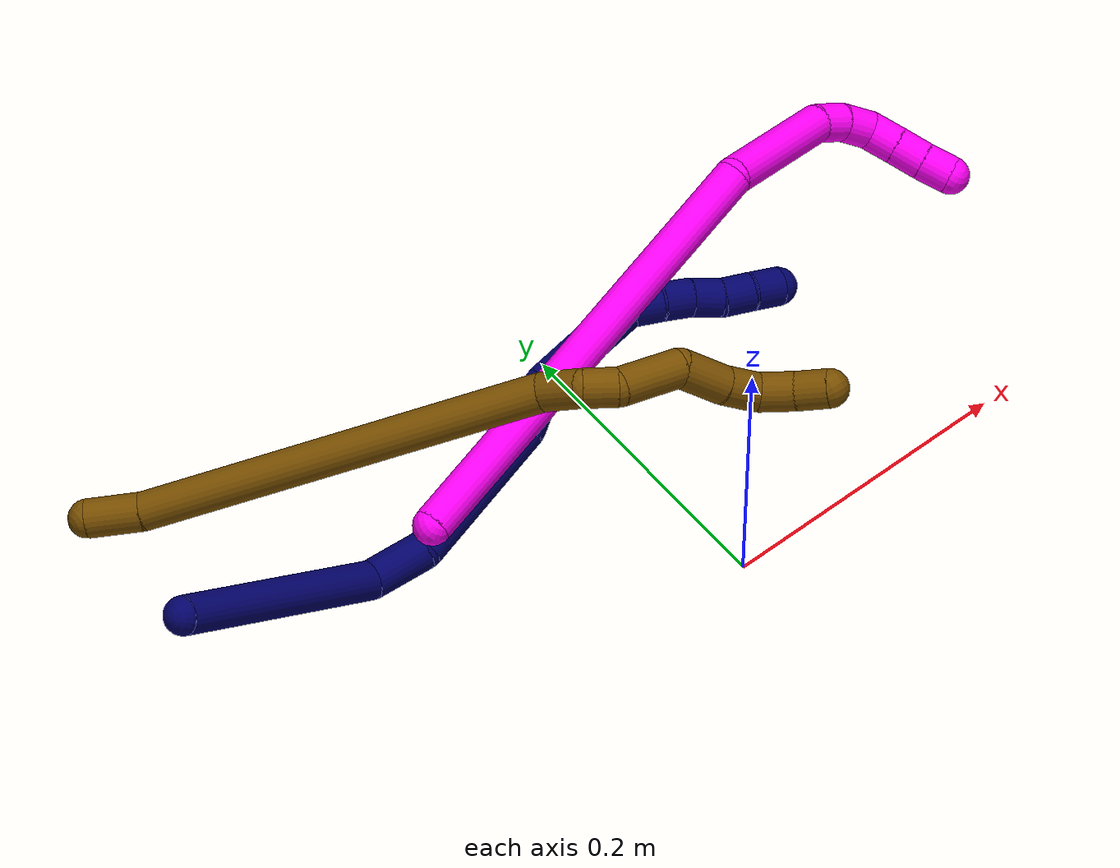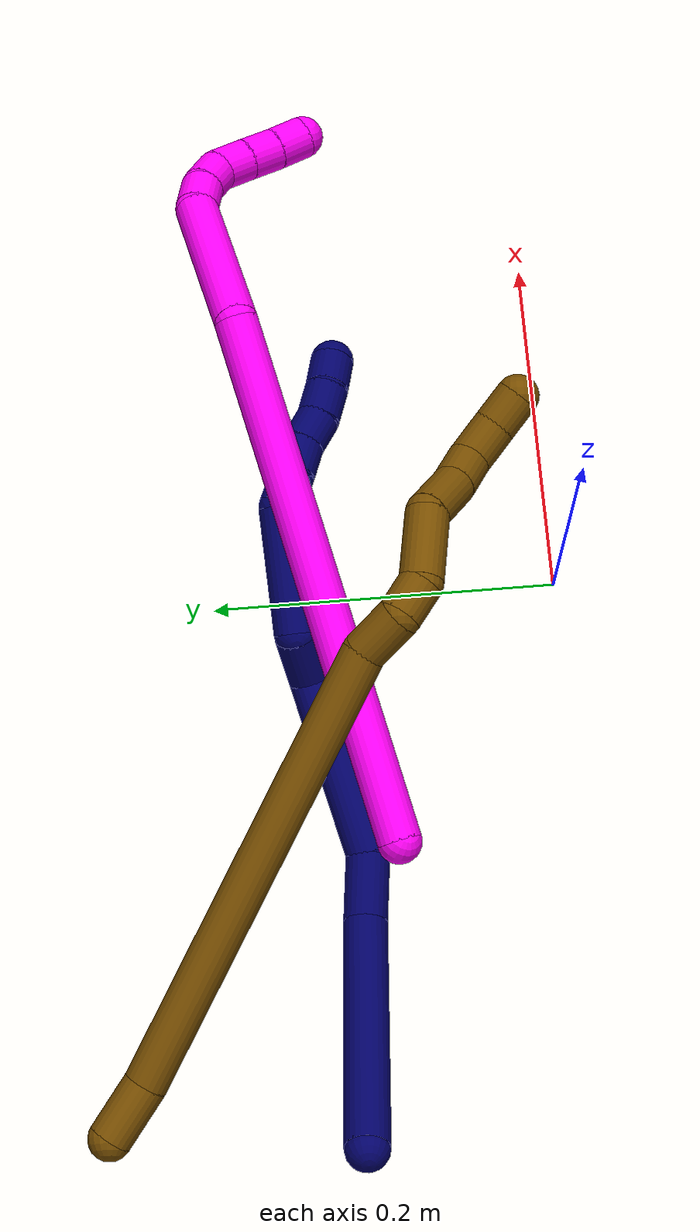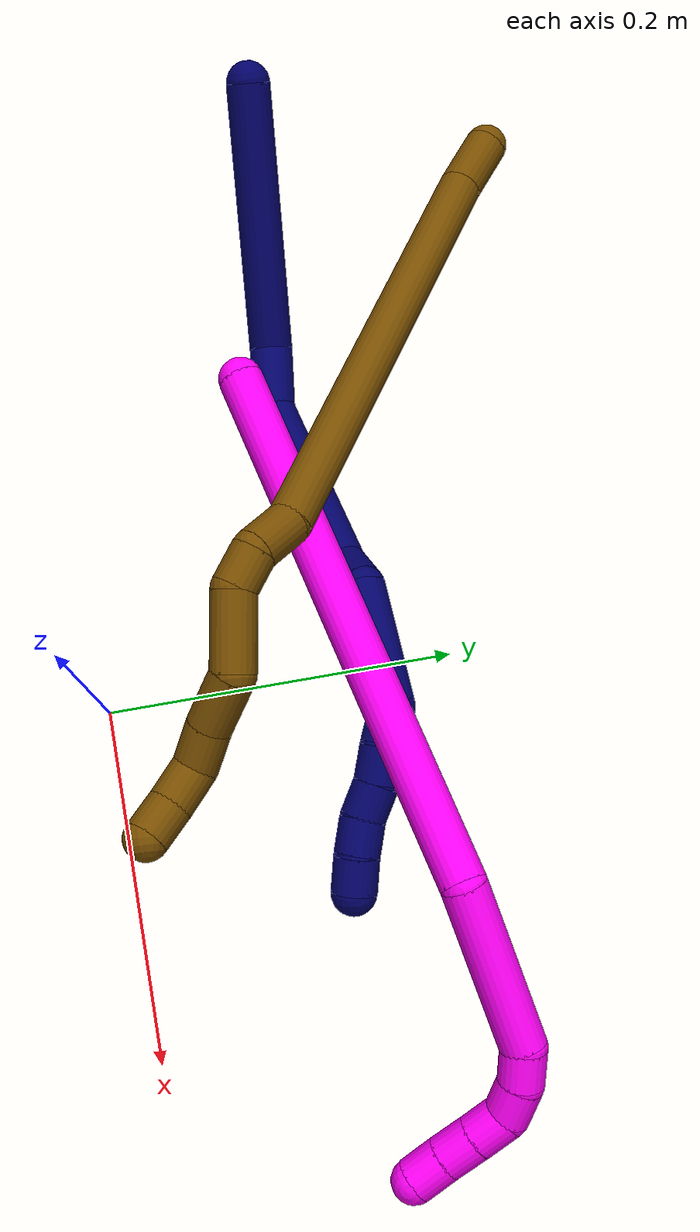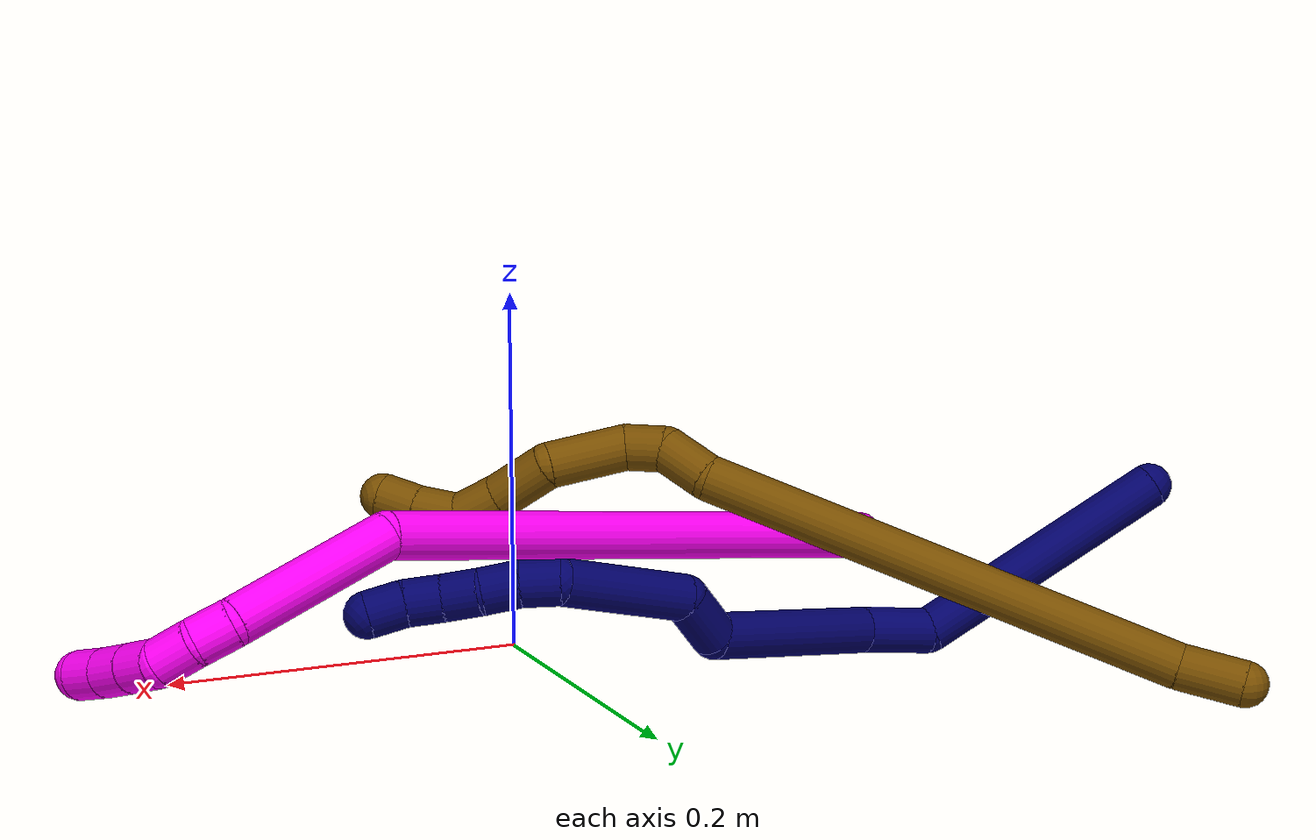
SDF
<sdf version="1.7">
 <world name="default">
  <model name="7">
   <static>0</static>
   <link name="7">
    <collision name="collision-cylinder-e_1_1_4">
     <pose>0.010124 -0.008341 -0.074289 3.02978 0.134609 1.75577</pose>
     <geometry><cylinder><radius>0.0125</radius><length>0.150876</length></cylinder></geometry>
     <surface>
      <friction><ode><mu>1.16</mu><mu2>1.16</mu2><slip1>0</slip1><slip2>0</slip2></ode></friction>
      <contact><ode><kp>1e+06</kp><kd>1</kd><max_vel>0</max_vel><min_depth>0.001</min_depth></ode></contact>
     </surface>
    </collision>
    <visual name="visual-cylinder-e_1_1_4">
     <pose>0.010124 -0.008341 -0.074289 3.02978 0.134609 1.75577</pose>
     <geometry><cylinder><radius>0.0125</radius><length>0.150876</length></cylinder></geometry>
     <material><ambient>0.003922 0 0.403922 1</ambient></material>
    </visual>
    <collision name="collision-cylinder-e_2_4_5">
     <pose>0.032054 -0.022666 -0.16267 2.74005 0.656904 2.06493</pose>
     <geometry><cylinder><radius>0.0125</radius><length>0.038666</length></cylinder></geometry>
     <surface>
      <friction><ode><mu>1.16</mu><mu2>1.16</mu2><slip1>0</slip1><slip2>0</slip2></ode></friction>
      <contact><ode><kp>1e+06</kp><kd>1</kd><max_vel>0</max_vel><min_depth>0.001</min_depth></ode></contact>
     </surface>
    </collision>
    <visual name="visual-cylinder-e_2_4_5">
     <pose>0.032054 -0.022666 -0.16267 2.74005 0.656904 2.06493</pose>
     <geometry><cylinder><radius>0.0125</radius><length>0.038666</length></cylinder></geometry>
     <material><ambient>0.003922 0 0.403922 1</ambient></material>
    </visual>
    <collision name="collision-cylinder-e_3_5_6">
     <pose>0.082025 -0.027597 -0.212113 -3.11182 0.823429 -3.07344</pose>
     <geometry><cylinder><radius>0.0125</radius><length>0.104066</length></cylinder></geometry>
     <surface>
      <friction><ode><mu>1.16</mu><mu2>1.16</mu2><slip1>0</slip1><slip2>0</slip2></ode></friction>
      <contact><ode><kp>1e+06</kp><kd>1</kd><max_vel>0</max_vel><min_depth>0.001</min_depth></ode></contact>
     </surface>
    </collision>
    <visual name="visual-cylinder-e_3_5_6">
     <pose>0.082025 -0.027597 -0.212113 -3.11182 0.823429 -3.07344</pose>
     <geometry><cylinder><radius>0.0125</radius><length>0.104066</length></cylinder></geometry>
     <material><ambient>0.003922 0 0.403922 1</ambient></material>
    </visual>
    <collision name="collision-cylinder-e_4_6_7">
     <pose>0.136266 -0.028123 -0.247806 1.78345 1.47063 1.68449</pose>
     <geometry><cylinder><radius>0.0125</radius><length>0.032312</length></cylinder></geometry>
     <surface>
      <friction><ode><mu>1.16</mu><mu2>1.16</mu2><slip1>0</slip1><slip2>0</slip2></ode></friction>
      <contact><ode><kp>1e+06</kp><kd>1</kd><max_vel>0</max_vel><min_depth>0.001</min_depth></ode></contact>
     </surface>
    </collision>
    <visual name="visual-cylinder-e_4_6_7">
     <pose>0.136266 -0.028123 -0.247806 1.78345 1.47063 1.68449</pose>
     <geometry><cylinder><radius>0.0125</radius><length>0.032312</length></cylinder></geometry>
     <material><ambient>0.003922 0 0.403922 1</ambient></material>
    </visual>
    <collision name="collision-cylinder-e_5_7_8">
     <pose>0.179721 -0.036436 -0.270883 2.85367 0.857055 2.52705</pose>
     <geometry><cylinder><radius>0.0125</radius><length>0.072441</length></cylinder></geometry>
     <surface>
      <friction><ode><mu>1.16</mu><mu2>1.16</mu2><slip1>0</slip1><slip2>0</slip2></ode></friction>
      <contact><ode><kp>1e+06</kp><kd>1</kd><max_vel>0</max_vel><min_depth>0.001</min_depth></ode></contact>
     </surface>
    </collision>
    <visual name="visual-cylinder-e_5_7_8">
     <pose>0.179721 -0.036436 -0.270883 2.85367 0.857055 2.52705</pose>
     <geometry><cylinder><radius>0.0125</radius><length>0.072441</length></cylinder></geometry>
     <material><ambient>0.003922 0 0.403922 1</ambient></material>
    </visual>
    <collision name="collision-cylinder-e_6_8_9">
     <pose>0.211237 -0.048889 -0.301742 2.52809 0.394552 1.12584</pose>
     <geometry><cylinder><radius>0.0125</radius><length>0.021523</length></cylinder></geometry>
     <surface>
      <friction><ode><mu>1.16</mu><mu2>1.16</mu2><slip1>0</slip1><slip2>0</slip2></ode></friction>
      <contact><ode><kp>1e+06</kp><kd>1</kd><max_vel>0</max_vel><min_depth>0.001</min_depth></ode></contact>
     </surface>
    </collision>
    <visual name="visual-cylinder-e_6_8_9">
     <pose>0.211237 -0.048889 -0.301742 2.52809 0.394552 1.12584</pose>
     <geometry><cylinder><radius>0.0125</radius><length>0.021523</length></cylinder></geometry>
     <material><ambient>0.003922 0 0.403922 1</ambient></material>
    </visual>
    <collision name="collision-cylinder-e_7_9_10">
     <pose>0.218379 -0.058954 -0.318366 2.66907 0.305029 1.13641</pose>
     <geometry><cylinder><radius>0.0125</radius><length>0.020018</length></cylinder></geometry>
     <surface>
      <friction><ode><mu>1.16</mu><mu2>1.16</mu2><slip1>0</slip1><slip2>0</slip2></ode></friction>
      <contact><ode><kp>1e+06</kp><kd>1</kd><max_vel>0</max_vel><min_depth>0.001</min_depth></ode></contact>
     </surface>
    </collision>
    <visual name="visual-cylinder-e_7_9_10">
     <pose>0.218379 -0.058954 -0.318366 2.66907 0.305029 1.13641</pose>
     <geometry><cylinder><radius>0.0125</radius><length>0.020018</length></cylinder></geometry>
     <material><ambient>0.003922 0 0.403922 1</ambient></material>
    </visual>
    <collision name="collision-cylinder-e_8_10_11">
     <pose>0.223279 -0.069214 -0.334742 2.49733 0.189928 0.556001</pose>
     <geometry><cylinder><radius>0.0125</radius><length>0.02006</length></cylinder></geometry>
     <surface>
      <friction><ode><mu>1.16</mu><mu2>1.16</mu2><slip1>0</slip1><slip2>0</slip2></ode></friction>
      <contact><ode><kp>1e+06</kp><kd>1</kd><max_vel>0</max_vel><min_depth>0.001</min_depth></ode></contact>
     </surface>
    </collision>
    <visual name="visual-cylinder-e_8_10_11">
     <pose>0.223279 -0.069214 -0.334742 2.49733 0.189928 0.556001</pose>
     <geometry><cylinder><radius>0.0125</radius><length>0.02006</length></cylinder></geometry>
     <material><ambient>0.003922 0 0.403922 1</ambient></material>
    </visual>
    <collision name="collision-cylinder-e_9_11_12">
     <pose>0.228829 -0.079582 -0.350799 2.64331 0.37409 1.27912</pose>
     <geometry><cylinder><radius>0.0125</radius><length>0.020014</length></cylinder></geometry>
     <surface>
      <friction><ode><mu>1.16</mu><mu2>1.16</mu2><slip1>0</slip1><slip2>0</slip2></ode></friction>
      <contact><ode><kp>1e+06</kp><kd>1</kd><max_vel>0</max_vel><min_depth>0.001</min_depth></ode></contact>
     </surface>
    </collision>
    <visual name="visual-cylinder-e_9_11_12">
     <pose>0.228829 -0.079582 -0.350799 2.64331 0.37409 1.27912</pose>
     <geometry><cylinder><radius>0.0125</radius><length>0.020014</length></cylinder></geometry>
     <material><ambient>0.003922 0 0.403922 1</ambient></material>
    </visual>
    <collision name="collision-cylinder-e_10_12_2">
     <pose>0.23534 -0.087305 -0.368003 2.79377 0.289095 1.38379</pose>
     <geometry><cylinder><radius>0.0125</radius><length>0.020024</length></cylinder></geometry>
     <surface>
      <friction><ode><mu>1.16</mu><mu2>1.16</mu2><slip1>0</slip1><slip2>0</slip2></ode></friction>
      <contact><ode><kp>1e+06</kp><kd>1</kd><max_vel>0</max_vel><min_depth>0.001</min_depth></ode></contact>
     </surface>
    </collision>
    <visual name="visual-cylinder-e_10_12_2">
     <pose>0.23534 -0.087305 -0.368003 2.79377 0.289095 1.38379</pose>
     <geometry><cylinder><radius>0.0125</radius><length>0.020024</length></cylinder></geometry>
     <material><ambient>0.003922 0 0.403922 1</ambient></material>
    </visual>
    <collision name="collision-sphere-2">
     <pose>0.238194 -0.090576 -0.377025 0 -0 0</pose>
     <geometry><sphere><radius>0.0125</radius></sphere></geometry>
     <surface>
      <friction><ode><mu>1.16</mu><mu2>1.16</mu2><slip1>0</slip1><slip2>0</slip2></ode></friction>
      <contact><ode><kp>1e+06</kp><kd>1</kd><max_vel>0</max_vel><min_depth>0.001</min_depth></ode></contact>
     </surface>
    </collision>
    <visual name="visual-sphere-2">
     <pose>0.238194 -0.090576 -0.377025 0 -0 0</pose>
     <geometry><sphere><radius>0.0125</radius></sphere></geometry>
     <material><ambient>0.003922 0 0.403922 1</ambient></material>
    </visual>
    <collision name="collision-sphere-12">
     <pose>0.232486 -0.084034 -0.358982 0 -0 0</pose>
     <geometry><sphere><radius>0.0125</radius></sphere></geometry>
     <surface>
      <friction><ode><mu>1.16</mu><mu2>1.16</mu2><slip1>0</slip1><slip2>0</slip2></ode></friction>
      <contact><ode><kp>1e+06</kp><kd>1</kd><max_vel>0</max_vel><min_depth>0.001</min_depth></ode></contact>
     </surface>
    </collision>
    <visual name="visual-sphere-12">
     <pose>0.232486 -0.084034 -0.358982 0 -0 0</pose>
     <geometry><sphere><radius>0.0125</radius></sphere></geometry>
     <material><ambient>0.003922 0 0.403922 1</ambient></material>
    </visual>
    <collision name="collision-sphere-11">
     <pose>0.225172 -0.07513 -0.342617 0 -0 0</pose>
     <geometry><sphere><radius>0.0125</radius></sphere></geometry>
     <surface>
      <friction><ode><mu>1.16</mu><mu2>1.16</mu2><slip1>0</slip1><slip2>0</slip2></ode></friction>
      <contact><ode><kp>1e+06</kp><kd>1</kd><max_vel>0</max_vel><min_depth>0.001</min_depth></ode></contact>
     </surface>
    </collision>
    <visual name="visual-sphere-11">
     <pose>0.225172 -0.07513 -0.342617 0 -0 0</pose>
     <geometry><sphere><radius>0.0125</radius></sphere></geometry>
     <material><ambient>0.003922 0 0.403922 1</ambient></material>
    </visual>
    <collision name="collision-sphere-10">
     <pose>0.221385 -0.063299 -0.326867 0 -0 0</pose>
     <geometry><sphere><radius>0.0125</radius></sphere></geometry>
     <surface>
      <friction><ode><mu>1.16</mu><mu2>1.16</mu2><slip1>0</slip1><slip2>0</slip2></ode></friction>
      <contact><ode><kp>1e+06</kp><kd>1</kd><max_vel>0</max_vel><min_depth>0.001</min_depth></ode></contact>
     </surface>
    </collision>
    <visual name="visual-sphere-10">
     <pose>0.221385 -0.063299 -0.326867 0 -0 0</pose>
     <geometry><sphere><radius>0.0125</radius></sphere></geometry>
     <material><ambient>0.003922 0 0.403922 1</ambient></material>
    </visual>
    <collision name="collision-sphere-9">
     <pose>0.215373 -0.054608 -0.309865 0 -0 0</pose>
     <geometry><sphere><radius>0.0125</radius></sphere></geometry>
     <surface>
      <friction><ode><mu>1.16</mu><mu2>1.16</mu2><slip1>0</slip1><slip2>0</slip2></ode></friction>
      <contact><ode><kp>1e+06</kp><kd>1</kd><max_vel>0</max_vel><min_depth>0.001</min_depth></ode></contact>
     </surface>
    </collision>
    <visual name="visual-sphere-9">
     <pose>0.215373 -0.054608 -0.309865 0 -0 0</pose>
     <geometry><sphere><radius>0.0125</radius></sphere></geometry>
     <material><ambient>0.003922 0 0.403922 1</ambient></material>
    </visual>
    <collision name="collision-sphere-4">
     <pose>0.020248 -0.016682 -0.148578 0 -0 0</pose>
     <geometry><sphere><radius>0.0125</radius></sphere></geometry>
     <surface>
      <friction><ode><mu>1.16</mu><mu2>1.16</mu2><slip1>0</slip1><slip2>0</slip2></ode></friction>
      <contact><ode><kp>1e+06</kp><kd>1</kd><max_vel>0</max_vel><min_depth>0.001</min_depth></ode></contact>
     </surface>
    </collision>
    <visual name="visual-sphere-4">
     <pose>0.020248 -0.016682 -0.148578 0 -0 0</pose>
     <geometry><sphere><radius>0.0125</radius></sphere></geometry>
     <material><ambient>0.003922 0 0.403922 1</ambient></material>
    </visual>
    <collision name="collision-sphere-1">
     <geometry><sphere><radius>0.0125</radius></sphere></geometry>
     <surface>
      <friction><ode><mu>1.16</mu><mu2>1.16</mu2><slip1>0</slip1><slip2>0</slip2></ode></friction>
      <contact><ode><kp>1e+06</kp><kd>1</kd><max_vel>0</max_vel><min_depth>0.001</min_depth></ode></contact>
     </surface>
    </collision>
    <visual name="visual-sphere-1">
     <geometry><sphere><radius>0.0125</radius></sphere></geometry>
     <material><ambient>0.003922 0 0.403922 1</ambient></material>
    </visual>
    <collision name="collision-sphere-8">
     <pose>0.2071 -0.043169 -0.293619 0 -0 0</pose>
     <geometry><sphere><radius>0.0125</radius></sphere></geometry>
     <surface>
      <friction><ode><mu>1.16</mu><mu2>1.16</mu2><slip1>0</slip1><slip2>0</slip2></ode></friction>
      <contact><ode><kp>1e+06</kp><kd>1</kd><max_vel>0</max_vel><min_depth>0.001</min_depth></ode></contact>
     </surface>
    </collision>
    <visual name="visual-sphere-8">
     <pose>0.2071 -0.043169 -0.293619 0 -0 0</pose>
     <geometry><sphere><radius>0.0125</radius></sphere></geometry>
     <material><ambient>0.003922 0 0.403922 1</ambient></material>
    </visual>
    <collision name="collision-sphere-5">
     <pose>0.04386 -0.028649 -0.176762 0 -0 0</pose>
     <geometry><sphere><radius>0.0125</radius></sphere></geometry>
     <surface>
      <friction><ode><mu>1.16</mu><mu2>1.16</mu2><slip1>0</slip1><slip2>0</slip2></ode></friction>
      <contact><ode><kp>1e+06</kp><kd>1</kd><max_vel>0</max_vel><min_depth>0.001</min_depth></ode></contact>
     </surface>
    </collision>
    <visual name="visual-sphere-5">
     <pose>0.04386 -0.028649 -0.176762 0 -0 0</pose>
     <geometry><sphere><radius>0.0125</radius></sphere></geometry>
     <material><ambient>0.003922 0 0.403922 1</ambient></material>
    </visual>
    <collision name="collision-sphere-6">
     <pose>0.120191 -0.026544 -0.247465 0 -0 0</pose>
     <geometry><sphere><radius>0.0125</radius></sphere></geometry>
     <surface>
      <friction><ode><mu>1.16</mu><mu2>1.16</mu2><slip1>0</slip1><slip2>0</slip2></ode></friction>
      <contact><ode><kp>1e+06</kp><kd>1</kd><max_vel>0</max_vel><min_depth>0.001</min_depth></ode></contact>
     </surface>
    </collision>
    <visual name="visual-sphere-6">
     <pose>0.120191 -0.026544 -0.247465 0 -0 0</pose>
     <geometry><sphere><radius>0.0125</radius></sphere></geometry>
     <material><ambient>0.003922 0 0.403922 1</ambient></material>
    </visual>
    <collision name="collision-sphere-7">
     <pose>0.152341 -0.029702 -0.248147 0 -0 0</pose>
     <geometry><sphere><radius>0.0125</radius></sphere></geometry>
     <surface>
      <friction><ode><mu>1.16</mu><mu2>1.16</mu2><slip1>0</slip1><slip2>0</slip2></ode></friction>
      <contact><ode><kp>1e+06</kp><kd>1</kd><max_vel>0</max_vel><min_depth>0.001</min_depth></ode></contact>
     </surface>
    </collision>
    <visual name="visual-sphere-7">
     <pose>0.152341 -0.029702 -0.248147 0 -0 0</pose>
     <geometry><sphere><radius>0.0125</radius></sphere></geometry>
     <material><ambient>0.003922 0 0.403922 1</ambient></material>
    </visual>
    <inertial>
     <pose>0.102828 -0.031033 -0.202348 0 -0 0</pose>
     <mass>0.5</mass>
     <inertia>
      <ixx>0.000185</ixx>
      <ixy>0</ixy>
      <ixz>0</ixz>
      <iyy>0.00049</iyy>
      <iyz>0</iyz>
      <izz>-0.000134</izz>
     </inertia>
    </inertial>
   </link>
   <pose>-0.326823 0.139182 0.090608 -0.375384 -0.8511 0.470401</pose>
  </model>
  <model name="10">
   <static>0</static>
   <link name="10">
    <collision name="collision-cylinder-e_1_1_4">
     <pose>0.128772 0.063383 0.052817 -0.876076 1.00099 -0.501574</pose>
     <geometry><cylinder><radius>0.0125</radius><length>0.305871</length></cylinder></geometry>
     <surface>
      <friction><ode><mu>1.16</mu><mu2>1.16</mu2><slip1>0</slip1><slip2>0</slip2></ode></friction>
      <contact><ode><kp>1e+06</kp><kd>1</kd><max_vel>0</max_vel><min_depth>0.001</min_depth></ode></contact>
     </surface>
    </collision>
    <visual name="visual-cylinder-e_1_1_4">
     <pose>0.128772 0.063383 0.052817 -0.876076 1.00099 -0.501574</pose>
     <geometry><cylinder><radius>0.0125</radius><length>0.305871</length></cylinder></geometry>
     <material><ambient>1 0 0.964706 1</ambient></material>
    </visual>
    <collision name="collision-cylinder-e_2_4_5">
     <pose>0.302389 0.136298 0.102545 -1.88415 1.35094 -1.66761</pose>
     <geometry><cylinder><radius>0.0125</radius><length>0.091901</length></cylinder></geometry>
     <surface>
      <friction><ode><mu>1.16</mu><mu2>1.16</mu2><slip1>0</slip1><slip2>0</slip2></ode></friction>
      <contact><ode><kp>1e+06</kp><kd>1</kd><max_vel>0</max_vel><min_depth>0.001</min_depth></ode></contact>
     </surface>
    </collision>
    <visual name="visual-cylinder-e_2_4_5">
     <pose>0.302389 0.136298 0.102545 -1.88415 1.35094 -1.66761</pose>
     <geometry><cylinder><radius>0.0125</radius><length>0.091901</length></cylinder></geometry>
     <material><ambient>1 0 0.964706 1</ambient></material>
    </visual>
    <collision name="collision-cylinder-e_3_5_6">
     <pose>0.357241 0.143836 0.099358 1.61975 1.37376 1.422</pose>
     <geometry><cylinder><radius>0.0125</radius><length>0.020409</length></cylinder></geometry>
     <surface>
      <friction><ode><mu>1.16</mu><mu2>1.16</mu2><slip1>0</slip1><slip2>0</slip2></ode></friction>
      <contact><ode><kp>1e+06</kp><kd>1</kd><max_vel>0</max_vel><min_depth>0.001</min_depth></ode></contact>
     </surface>
    </collision>
    <visual name="visual-cylinder-e_3_5_6">
     <pose>0.357241 0.143836 0.099358 1.61975 1.37376 1.422</pose>
     <geometry><cylinder><radius>0.0125</radius><length>0.020409</length></cylinder></geometry>
     <material><ambient>1 0 0.964706 1</ambient></material>
    </visual>
    <collision name="collision-cylinder-e_4_6_7">
     <pose>0.376602 0.136808 0.098981 1.62628 1.07651 1.12601</pose>
     <geometry><cylinder><radius>0.0125</radius><length>0.021252</length></cylinder></geometry>
     <surface>
      <friction><ode><mu>1.16</mu><mu2>1.16</mu2><slip1>0</slip1><slip2>0</slip2></ode></friction>
      <contact><ode><kp>1e+06</kp><kd>1</kd><max_vel>0</max_vel><min_depth>0.001</min_depth></ode></contact>
     </surface>
    </collision>
    <visual name="visual-cylinder-e_4_6_7">
     <pose>0.376602 0.136808 0.098981 1.62628 1.07651 1.12601</pose>
     <geometry><cylinder><radius>0.0125</radius><length>0.021252</length></cylinder></geometry>
     <material><ambient>1 0 0.964706 1</ambient></material>
    </visual>
    <collision name="collision-cylinder-e_5_7_8">
     <pose>0.391335 0.123507 0.101012 1.2983 0.559747 0.429493</pose>
     <geometry><cylinder><radius>0.0125</radius><length>0.020262</length></cylinder></geometry>
     <surface>
      <friction><ode><mu>1.16</mu><mu2>1.16</mu2><slip1>0</slip1><slip2>0</slip2></ode></friction>
      <contact><ode><kp>1e+06</kp><kd>1</kd><max_vel>0</max_vel><min_depth>0.001</min_depth></ode></contact>
     </surface>
    </collision>
    <visual name="visual-cylinder-e_5_7_8">
     <pose>0.391335 0.123507 0.101012 1.2983 0.559747 0.429493</pose>
     <geometry><cylinder><radius>0.0125</radius><length>0.020262</length></cylinder></geometry>
     <material><ambient>1 0 0.964706 1</ambient></material>
    </visual>
    <collision name="collision-cylinder-e_6_8_9">
     <pose>0.401877 0.106888 0.105675 1.29611 0.536781 0.410599</pose>
     <geometry><cylinder><radius>0.0125</radius><length>0.020191</length></cylinder></geometry>
     <surface>
      <friction><ode><mu>1.16</mu><mu2>1.16</mu2><slip1>0</slip1><slip2>0</slip2></ode></friction>
      <contact><ode><kp>1e+06</kp><kd>1</kd><max_vel>0</max_vel><min_depth>0.001</min_depth></ode></contact>
     </surface>
    </collision>
    <visual name="visual-cylinder-e_6_8_9">
     <pose>0.401877 0.106888 0.105675 1.29611 0.536781 0.410599</pose>
     <geometry><cylinder><radius>0.0125</radius><length>0.020191</length></cylinder></geometry>
     <material><ambient>1 0 0.964706 1</ambient></material>
    </visual>
    <collision name="collision-cylinder-e_7_9_2">
     <pose>0.412285 0.090452 0.110903 1.22927 0.548669 0.392185</pose>
     <geometry><cylinder><radius>0.0125</radius><length>0.020114</length></cylinder></geometry>
     <surface>
      <friction><ode><mu>1.16</mu><mu2>1.16</mu2><slip1>0</slip1><slip2>0</slip2></ode></friction>
      <contact><ode><kp>1e+06</kp><kd>1</kd><max_vel>0</max_vel><min_depth>0.001</min_depth></ode></contact>
     </surface>
    </collision>
    <visual name="visual-cylinder-e_7_9_2">
     <pose>0.412285 0.090452 0.110903 1.22927 0.548669 0.392185</pose>
     <geometry><cylinder><radius>0.0125</radius><length>0.020114</length></cylinder></geometry>
     <material><ambient>1 0 0.964706 1</ambient></material>
    </visual>
    <collision name="collision-sphere-2">
     <pose>0.41753 0.082367 0.113776 0 -0 0</pose>
     <geometry><sphere><radius>0.0125</radius></sphere></geometry>
     <surface>
      <friction><ode><mu>1.16</mu><mu2>1.16</mu2><slip1>0</slip1><slip2>0</slip2></ode></friction>
      <contact><ode><kp>1e+06</kp><kd>1</kd><max_vel>0</max_vel><min_depth>0.001</min_depth></ode></contact>
     </surface>
    </collision>
    <visual name="visual-sphere-2">
     <pose>0.41753 0.082367 0.113776 0 -0 0</pose>
     <geometry><sphere><radius>0.0125</radius></sphere></geometry>
     <material><ambient>1 0 0.964706 1</ambient></material>
    </visual>
    <collision name="collision-sphere-9">
     <pose>0.40704 0.098538 0.108029 0 -0 0</pose>
     <geometry><sphere><radius>0.0125</radius></sphere></geometry>
     <surface>
      <friction><ode><mu>1.16</mu><mu2>1.16</mu2><slip1>0</slip1><slip2>0</slip2></ode></friction>
      <contact><ode><kp>1e+06</kp><kd>1</kd><max_vel>0</max_vel><min_depth>0.001</min_depth></ode></contact>
     </surface>
    </collision>
    <visual name="visual-sphere-9">
     <pose>0.40704 0.098538 0.108029 0 -0 0</pose>
     <geometry><sphere><radius>0.0125</radius></sphere></geometry>
     <material><ambient>1 0 0.964706 1</ambient></material>
    </visual>
    <collision name="collision-sphere-4">
     <pose>0.257545 0.126765 0.105634 0 -0 0</pose>
     <geometry><sphere><radius>0.0125</radius></sphere></geometry>
     <surface>
      <friction><ode><mu>1.16</mu><mu2>1.16</mu2><slip1>0</slip1><slip2>0</slip2></ode></friction>
      <contact><ode><kp>1e+06</kp><kd>1</kd><max_vel>0</max_vel><min_depth>0.001</min_depth></ode></contact>
     </surface>
    </collision>
    <visual name="visual-sphere-4">
     <pose>0.257545 0.126765 0.105634 0 -0 0</pose>
     <geometry><sphere><radius>0.0125</radius></sphere></geometry>
     <material><ambient>1 0 0.964706 1</ambient></material>
    </visual>
    <collision name="collision-sphere-1">
     <geometry><sphere><radius>0.0125</radius></sphere></geometry>
     <surface>
      <friction><ode><mu>1.16</mu><mu2>1.16</mu2><slip1>0</slip1><slip2>0</slip2></ode></friction>
      <contact><ode><kp>1e+06</kp><kd>1</kd><max_vel>0</max_vel><min_depth>0.001</min_depth></ode></contact>
     </surface>
    </collision>
    <visual name="visual-sphere-1">
     <geometry><sphere><radius>0.0125</radius></sphere></geometry>
     <material><ambient>1 0 0.964706 1</ambient></material>
    </visual>
    <collision name="collision-sphere-8">
     <pose>0.396715 0.115238 0.103322 0 -0 0</pose>
     <geometry><sphere><radius>0.0125</radius></sphere></geometry>
     <surface>
      <friction><ode><mu>1.16</mu><mu2>1.16</mu2><slip1>0</slip1><slip2>0</slip2></ode></friction>
      <contact><ode><kp>1e+06</kp><kd>1</kd><max_vel>0</max_vel><min_depth>0.001</min_depth></ode></contact>
     </surface>
    </collision>
    <visual name="visual-sphere-8">
     <pose>0.396715 0.115238 0.103322 0 -0 0</pose>
     <geometry><sphere><radius>0.0125</radius></sphere></geometry>
     <material><ambient>1 0 0.964706 1</ambient></material>
    </visual>
    <collision name="collision-sphere-5">
     <pose>0.347234 0.145832 0.099456 0 -0 0</pose>
     <geometry><sphere><radius>0.0125</radius></sphere></geometry>
     <surface>
      <friction><ode><mu>1.16</mu><mu2>1.16</mu2><slip1>0</slip1><slip2>0</slip2></ode></friction>
      <contact><ode><kp>1e+06</kp><kd>1</kd><max_vel>0</max_vel><min_depth>0.001</min_depth></ode></contact>
     </surface>
    </collision>
    <visual name="visual-sphere-5">
     <pose>0.347234 0.145832 0.099456 0 -0 0</pose>
     <geometry><sphere><radius>0.0125</radius></sphere></geometry>
     <material><ambient>1 0 0.964706 1</ambient></material>
    </visual>
    <collision name="collision-sphere-6">
     <pose>0.367248 0.141841 0.09926 0 -0 0</pose>
     <geometry><sphere><radius>0.0125</radius></sphere></geometry>
     <surface>
      <friction><ode><mu>1.16</mu><mu2>1.16</mu2><slip1>0</slip1><slip2>0</slip2></ode></friction>
      <contact><ode><kp>1e+06</kp><kd>1</kd><max_vel>0</max_vel><min_depth>0.001</min_depth></ode></contact>
     </surface>
    </collision>
    <visual name="visual-sphere-6">
     <pose>0.367248 0.141841 0.09926 0 -0 0</pose>
     <geometry><sphere><radius>0.0125</radius></sphere></geometry>
     <material><ambient>1 0 0.964706 1</ambient></material>
    </visual>
    <collision name="collision-sphere-7">
     <pose>0.385956 0.131775 0.098701 0 -0 0</pose>
     <geometry><sphere><radius>0.0125</radius></sphere></geometry>
     <surface>
      <friction><ode><mu>1.16</mu><mu2>1.16</mu2><slip1>0</slip1><slip2>0</slip2></ode></friction>
      <contact><ode><kp>1e+06</kp><kd>1</kd><max_vel>0</max_vel><min_depth>0.001</min_depth></ode></contact>
     </surface>
    </collision>
    <visual name="visual-sphere-7">
     <pose>0.385956 0.131775 0.098701 0 -0 0</pose>
     <geometry><sphere><radius>0.0125</radius></sphere></geometry>
     <material><ambient>1 0 0.964706 1</ambient></material>
    </visual>
    <inertial>
     <pose>0.213617 0.088472 0.072243 0 -0 0</pose>
     <mass>0.5</mass>
     <inertia>
      <ixx>0.000535</ixx>
      <ixy>0</ixy>
      <ixz>0</ixz>
      <iyy>0.001533</iyy>
      <iyz>0</iyz>
      <izz>-0.003084</izz>
     </inertia>
    </inertial>
   </link>
   <pose>-0.161474 0.10701 0.071561 0.401642 0.372202 -0.028739</pose>
  </model>
  <model name="12">
   <static>0</static>
   <link name="12">
    <collision name="collision-cylinder-e_1_1_4">
     <pose>0.008766 -0.006528 -0.01416 2.70962 0.512149 1.74663</pose>
     <geometry><cylinder><radius>0.0125</radius><length>0.035775</length></cylinder></geometry>
     <surface>
      <friction><ode><mu>1.16</mu><mu2>1.16</mu2><slip1>0</slip1><slip2>0</slip2></ode></friction>
      <contact><ode><kp>1e+06</kp><kd>1</kd><max_vel>0</max_vel><min_depth>0.001</min_depth></ode></contact>
     </surface>
    </collision>
    <visual name="visual-cylinder-e_1_1_4">
     <pose>0.008766 -0.006528 -0.01416 2.70962 0.512149 1.74663</pose>
     <geometry><cylinder><radius>0.0125</radius><length>0.035775</length></cylinder></geometry>
     <material><ambient>0.466667 0.301961 0 1</ambient></material>
    </visual>
    <collision name="collision-cylinder-e_2_4_5">
     <pose>0.092769 -0.040617 -0.135213 2.88925 0.598246 2.36111</pose>
     <geometry><cylinder><radius>0.0125</radius><length>0.26718</length></cylinder></geometry>
     <surface>
      <friction><ode><mu>1.16</mu><mu2>1.16</mu2><slip1>0</slip1><slip2>0</slip2></ode></friction>
      <contact><ode><kp>1e+06</kp><kd>1</kd><max_vel>0</max_vel><min_depth>0.001</min_depth></ode></contact>
     </surface>
    </collision>
    <visual name="visual-cylinder-e_2_4_5">
     <pose>0.092769 -0.040617 -0.135213 2.88925 0.598246 2.36111</pose>
     <geometry><cylinder><radius>0.0125</radius><length>0.26718</length></cylinder></geometry>
     <material><ambient>0.466667 0.301961 0 1</ambient></material>
    </visual>
    <collision name="collision-cylinder-e_3_5_6">
     <pose>0.178732 -0.073027 -0.249943 2.58759 0.86101 2.03291</pose>
     <geometry><cylinder><radius>0.0125</radius><length>0.028282</length></cylinder></geometry>
     <surface>
      <friction><ode><mu>1.16</mu><mu2>1.16</mu2><slip1>0</slip1><slip2>0</slip2></ode></friction>
      <contact><ode><kp>1e+06</kp><kd>1</kd><max_vel>0</max_vel><min_depth>0.001</min_depth></ode></contact>
     </surface>
    </collision>
    <visual name="visual-cylinder-e_3_5_6">
     <pose>0.178732 -0.073027 -0.249943 2.58759 0.86101 2.03291</pose>
     <geometry><cylinder><radius>0.0125</radius><length>0.028282</length></cylinder></geometry>
     <material><ambient>0.466667 0.301961 0 1</ambient></material>
    </visual>
    <collision name="collision-cylinder-e_4_6_7">
     <pose>0.193001 -0.083027 -0.267027 2.63324 0.322964 1.12013</pose>
     <geometry><cylinder><radius>0.0125</radius><length>0.022326</length></cylinder></geometry>
     <surface>
      <friction><ode><mu>1.16</mu><mu2>1.16</mu2><slip1>0</slip1><slip2>0</slip2></ode></friction>
      <contact><ode><kp>1e+06</kp><kd>1</kd><max_vel>0</max_vel><min_depth>0.001</min_depth></ode></contact>
     </surface>
    </collision>
    <visual name="visual-cylinder-e_4_6_7">
     <pose>0.193001 -0.083027 -0.267027 2.63324 0.322964 1.12013</pose>
     <geometry><cylinder><radius>0.0125</radius><length>0.022326</length></cylinder></geometry>
     <material><ambient>0.466667 0.301961 0 1</ambient></material>
    </visual>
    <collision name="collision-cylinder-e_5_7_8">
     <pose>0.19513 -0.092155 -0.297534 2.95673 -0.065279 -0.677347</pose>
     <geometry><cylinder><radius>0.0125</radius><length>0.043349</length></cylinder></geometry>
     <surface>
      <friction><ode><mu>1.16</mu><mu2>1.16</mu2><slip1>0</slip1><slip2>0</slip2></ode></friction>
      <contact><ode><kp>1e+06</kp><kd>1</kd><max_vel>0</max_vel><min_depth>0.001</min_depth></ode></contact>
     </surface>
    </collision>
    <visual name="visual-cylinder-e_5_7_8">
     <pose>0.19513 -0.092155 -0.297534 2.95673 -0.065279 -0.677347</pose>
     <geometry><cylinder><radius>0.0125</radius><length>0.043349</length></cylinder></geometry>
     <material><ambient>0.466667 0.301961 0 1</ambient></material>
    </visual>
    <collision name="collision-cylinder-e_6_8_9">
     <pose>0.190317 -0.107521 -0.330156 2.35493 -0.208234 -0.493387</pose>
     <geometry><cylinder><radius>0.0125</radius><length>0.032887</length></cylinder></geometry>
     <surface>
      <friction><ode><mu>1.16</mu><mu2>1.16</mu2><slip1>0</slip1><slip2>0</slip2></ode></friction>
      <contact><ode><kp>1e+06</kp><kd>1</kd><max_vel>0</max_vel><min_depth>0.001</min_depth></ode></contact>
     </surface>
    </collision>
    <visual name="visual-cylinder-e_6_8_9">
     <pose>0.190317 -0.107521 -0.330156 2.35493 -0.208234 -0.493387</pose>
     <geometry><cylinder><radius>0.0125</radius><length>0.032887</length></cylinder></geometry>
     <material><ambient>0.466667 0.301961 0 1</ambient></material>
    </visual>
    <collision name="collision-cylinder-e_7_9_10">
     <pose>0.184789 -0.12625 -0.351314 2.49874 -0.172148 -0.507126</pose>
     <geometry><cylinder><radius>0.0125</radius><length>0.024847</length></cylinder></geometry>
     <surface>
      <friction><ode><mu>1.16</mu><mu2>1.16</mu2><slip1>0</slip1><slip2>0</slip2></ode></friction>
      <contact><ode><kp>1e+06</kp><kd>1</kd><max_vel>0</max_vel><min_depth>0.001</min_depth></ode></contact>
     </surface>
    </collision>
    <visual name="visual-cylinder-e_7_9_10">
     <pose>0.184789 -0.12625 -0.351314 2.49874 -0.172148 -0.507126</pose>
     <geometry><cylinder><radius>0.0125</radius><length>0.024847</length></cylinder></geometry>
     <material><ambient>0.466667 0.301961 0 1</ambient></material>
    </visual>
    <collision name="collision-cylinder-e_8_10_11">
     <pose>0.188079 -0.139045 -0.370377 2.60924 0.466669 1.43391</pose>
     <geometry><cylinder><radius>0.0125</radius><length>0.024083</length></cylinder></geometry>
     <surface>
      <friction><ode><mu>1.16</mu><mu2>1.16</mu2><slip1>0</slip1><slip2>0</slip2></ode></friction>
      <contact><ode><kp>1e+06</kp><kd>1</kd><max_vel>0</max_vel><min_depth>0.001</min_depth></ode></contact>
     </surface>
    </collision>
    <visual name="visual-cylinder-e_8_10_11">
     <pose>0.188079 -0.139045 -0.370377 2.60924 0.466669 1.43391</pose>
     <geometry><cylinder><radius>0.0125</radius><length>0.024083</length></cylinder></geometry>
     <material><ambient>0.466667 0.301961 0 1</ambient></material>
    </visual>
    <collision name="collision-cylinder-e_9_11_2">
     <pose>0.199423 -0.148706 -0.387408 2.64554 0.591172 1.75411</pose>
     <geometry><cylinder><radius>0.0125</radius><length>0.02127</length></cylinder></geometry>
     <surface>
      <friction><ode><mu>1.16</mu><mu2>1.16</mu2><slip1>0</slip1><slip2>0</slip2></ode></friction>
      <contact><ode><kp>1e+06</kp><kd>1</kd><max_vel>0</max_vel><min_depth>0.001</min_depth></ode></contact>
     </surface>
    </collision>
    <visual name="visual-cylinder-e_9_11_2">
     <pose>0.199423 -0.148706 -0.387408 2.64554 0.591172 1.75411</pose>
     <geometry><cylinder><radius>0.0125</radius><length>0.02127</length></cylinder></geometry>
     <material><ambient>0.466667 0.301961 0 1</ambient></material>
    </visual>
    <collision name="collision-sphere-2">
     <pose>0.205351 -0.152909 -0.395174 0 -0 0</pose>
     <geometry><sphere><radius>0.0125</radius></sphere></geometry>
     <surface>
      <friction><ode><mu>1.16</mu><mu2>1.16</mu2><slip1>0</slip1><slip2>0</slip2></ode></friction>
      <contact><ode><kp>1e+06</kp><kd>1</kd><max_vel>0</max_vel><min_depth>0.001</min_depth></ode></contact>
     </surface>
    </collision>
    <visual name="visual-sphere-2">
     <pose>0.205351 -0.152909 -0.395174 0 -0 0</pose>
     <geometry><sphere><radius>0.0125</radius></sphere></geometry>
     <material><ambient>0.466667 0.301961 0 1</ambient></material>
    </visual>
    <collision name="collision-sphere-11">
     <pose>0.193496 -0.144504 -0.379642 0 -0 0</pose>
     <geometry><sphere><radius>0.0125</radius></sphere></geometry>
     <surface>
      <friction><ode><mu>1.16</mu><mu2>1.16</mu2><slip1>0</slip1><slip2>0</slip2></ode></friction>
      <contact><ode><kp>1e+06</kp><kd>1</kd><max_vel>0</max_vel><min_depth>0.001</min_depth></ode></contact>
     </surface>
    </collision>
    <visual name="visual-sphere-11">
     <pose>0.193496 -0.144504 -0.379642 0 -0 0</pose>
     <geometry><sphere><radius>0.0125</radius></sphere></geometry>
     <material><ambient>0.466667 0.301961 0 1</ambient></material>
    </visual>
    <collision name="collision-sphere-10">
     <pose>0.182661 -0.133587 -0.361111 0 -0 0</pose>
     <geometry><sphere><radius>0.0125</radius></sphere></geometry>
     <surface>
      <friction><ode><mu>1.16</mu><mu2>1.16</mu2><slip1>0</slip1><slip2>0</slip2></ode></friction>
      <contact><ode><kp>1e+06</kp><kd>1</kd><max_vel>0</max_vel><min_depth>0.001</min_depth></ode></contact>
     </surface>
    </collision>
    <visual name="visual-sphere-10">
     <pose>0.182661 -0.133587 -0.361111 0 -0 0</pose>
     <geometry><sphere><radius>0.0125</radius></sphere></geometry>
     <material><ambient>0.466667 0.301961 0 1</ambient></material>
    </visual>
    <collision name="collision-sphere-9">
     <pose>0.186917 -0.118912 -0.341518 0 -0 0</pose>
     <geometry><sphere><radius>0.0125</radius></sphere></geometry>
     <surface>
      <friction><ode><mu>1.16</mu><mu2>1.16</mu2><slip1>0</slip1><slip2>0</slip2></ode></friction>
      <contact><ode><kp>1e+06</kp><kd>1</kd><max_vel>0</max_vel><min_depth>0.001</min_depth></ode></contact>
     </surface>
    </collision>
    <visual name="visual-sphere-9">
     <pose>0.186917 -0.118912 -0.341518 0 -0 0</pose>
     <geometry><sphere><radius>0.0125</radius></sphere></geometry>
     <material><ambient>0.466667 0.301961 0 1</ambient></material>
    </visual>
    <collision name="collision-sphere-4">
     <pose>0.017532 -0.013056 -0.028321 0 -0 0</pose>
     <geometry><sphere><radius>0.0125</radius></sphere></geometry>
     <surface>
      <friction><ode><mu>1.16</mu><mu2>1.16</mu2><slip1>0</slip1><slip2>0</slip2></ode></friction>
      <contact><ode><kp>1e+06</kp><kd>1</kd><max_vel>0</max_vel><min_depth>0.001</min_depth></ode></contact>
     </surface>
    </collision>
    <visual name="visual-sphere-4">
     <pose>0.017532 -0.013056 -0.028321 0 -0 0</pose>
     <geometry><sphere><radius>0.0125</radius></sphere></geometry>
     <material><ambient>0.466667 0.301961 0 1</ambient></material>
    </visual>
    <collision name="collision-sphere-1">
     <geometry><sphere><radius>0.0125</radius></sphere></geometry>
     <surface>
      <friction><ode><mu>1.16</mu><mu2>1.16</mu2><slip1>0</slip1><slip2>0</slip2></ode></friction>
      <contact><ode><kp>1e+06</kp><kd>1</kd><max_vel>0</max_vel><min_depth>0.001</min_depth></ode></contact>
     </surface>
    </collision>
    <visual name="visual-sphere-1">
     <geometry><sphere><radius>0.0125</radius></sphere></geometry>
     <material><ambient>0.466667 0.301961 0 1</ambient></material>
    </visual>
    <collision name="collision-sphere-8">
     <pose>0.193716 -0.096131 -0.318794 0 -0 0</pose>
     <geometry><sphere><radius>0.0125</radius></sphere></geometry>
     <surface>
      <friction><ode><mu>1.16</mu><mu2>1.16</mu2><slip1>0</slip1><slip2>0</slip2></ode></friction>
      <contact><ode><kp>1e+06</kp><kd>1</kd><max_vel>0</max_vel><min_depth>0.001</min_depth></ode></contact>
     </surface>
    </collision>
    <visual name="visual-sphere-8">
     <pose>0.193716 -0.096131 -0.318794 0 -0 0</pose>
     <geometry><sphere><radius>0.0125</radius></sphere></geometry>
     <material><ambient>0.466667 0.301961 0 1</ambient></material>
    </visual>
    <collision name="collision-sphere-5">
     <pose>0.168006 -0.068178 -0.242106 0 -0 0</pose>
     <geometry><sphere><radius>0.0125</radius></sphere></geometry>
     <surface>
      <friction><ode><mu>1.16</mu><mu2>1.16</mu2><slip1>0</slip1><slip2>0</slip2></ode></friction>
      <contact><ode><kp>1e+06</kp><kd>1</kd><max_vel>0</max_vel><min_depth>0.001</min_depth></ode></contact>
     </surface>
    </collision>
    <visual name="visual-sphere-5">
     <pose>0.168006 -0.068178 -0.242106 0 -0 0</pose>
     <geometry><sphere><radius>0.0125</radius></sphere></geometry>
     <material><ambient>0.466667 0.301961 0 1</ambient></material>
    </visual>
    <collision name="collision-sphere-6">
     <pose>0.189458 -0.077875 -0.25778 0 -0 0</pose>
     <geometry><sphere><radius>0.0125</radius></sphere></geometry>
     <surface>
      <friction><ode><mu>1.16</mu><mu2>1.16</mu2><slip1>0</slip1><slip2>0</slip2></ode></friction>
      <contact><ode><kp>1e+06</kp><kd>1</kd><max_vel>0</max_vel><min_depth>0.001</min_depth></ode></contact>
     </surface>
    </collision>
    <visual name="visual-sphere-6">
     <pose>0.189458 -0.077875 -0.25778 0 -0 0</pose>
     <geometry><sphere><radius>0.0125</radius></sphere></geometry>
     <material><ambient>0.466667 0.301961 0 1</ambient></material>
    </visual>
    <collision name="collision-sphere-7">
     <pose>0.196544 -0.08818 -0.276275 0 -0 0</pose>
     <geometry><sphere><radius>0.0125</radius></sphere></geometry>
     <surface>
      <friction><ode><mu>1.16</mu><mu2>1.16</mu2><slip1>0</slip1><slip2>0</slip2></ode></friction>
      <contact><ode><kp>1e+06</kp><kd>1</kd><max_vel>0</max_vel><min_depth>0.001</min_depth></ode></contact>
     </surface>
    </collision>
    <visual name="visual-sphere-7">
     <pose>0.196544 -0.08818 -0.276275 0 -0 0</pose>
     <geometry><sphere><radius>0.0125</radius></sphere></geometry>
     <material><ambient>0.466667 0.301961 0 1</ambient></material>
    </visual>
    <inertial>
     <pose>0.125088 -0.064368 -0.198617 0 -0 0</pose>
     <mass>0.5</mass>
     <inertia>
      <ixx>2.1e-05</ixx>
      <ixy>0</ixy>
      <ixz>0</ixz>
      <iyy>0.002174</iyy>
      <iyz>0</iyz>
      <izz>-0.000596</izz>
     </inertia>
    </inertial>
   </link>
   <pose>-0.302221 0.277989 0.014629 1.51536 -1.01762 -1.57679</pose>
  </model>
 </world>
</sdf>
